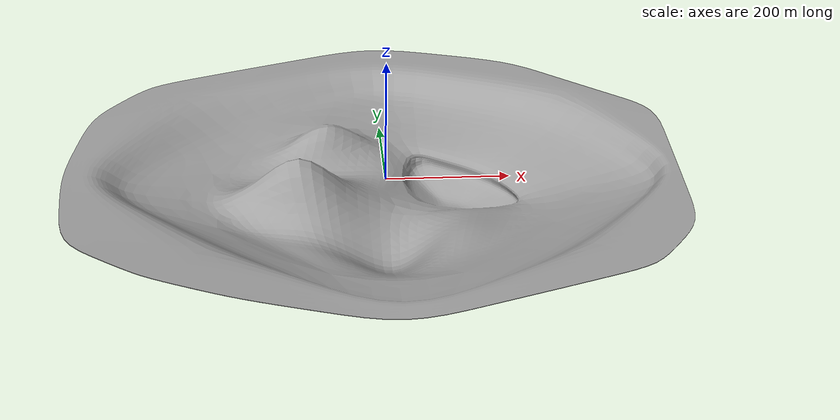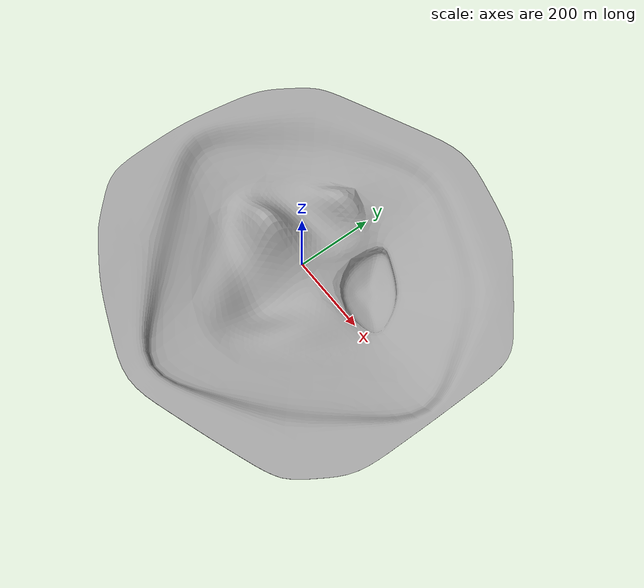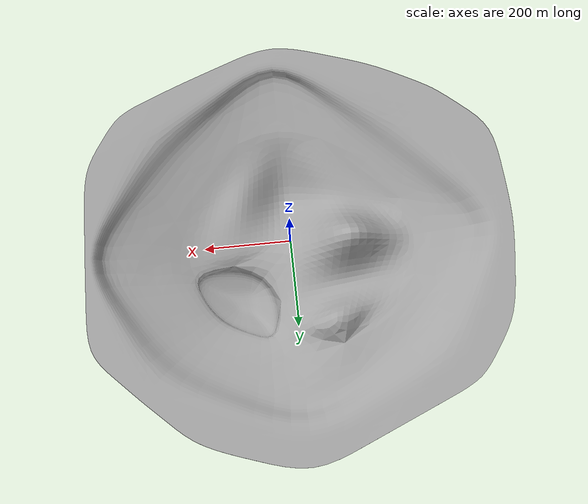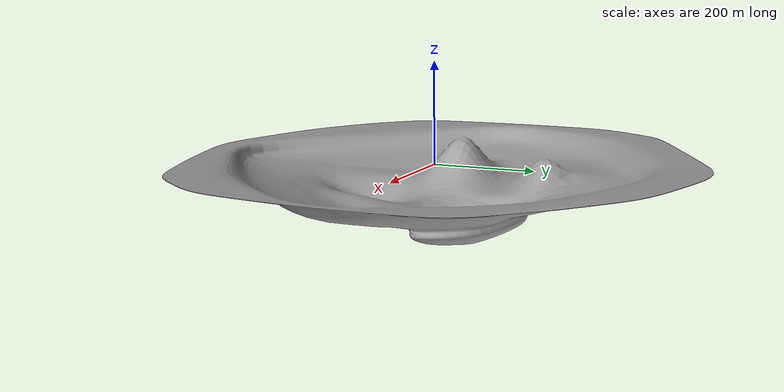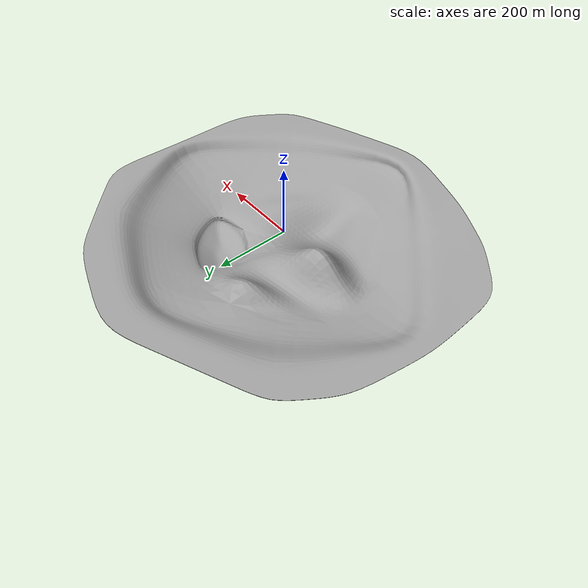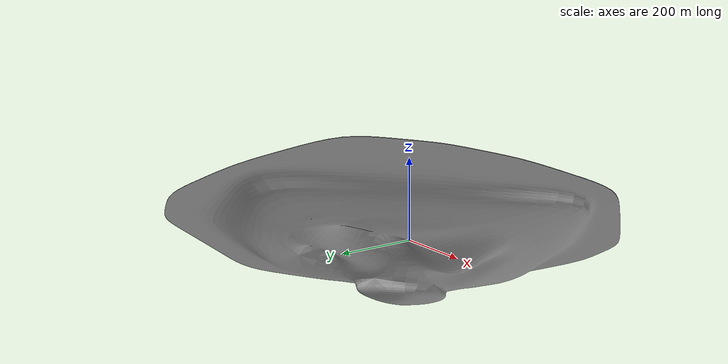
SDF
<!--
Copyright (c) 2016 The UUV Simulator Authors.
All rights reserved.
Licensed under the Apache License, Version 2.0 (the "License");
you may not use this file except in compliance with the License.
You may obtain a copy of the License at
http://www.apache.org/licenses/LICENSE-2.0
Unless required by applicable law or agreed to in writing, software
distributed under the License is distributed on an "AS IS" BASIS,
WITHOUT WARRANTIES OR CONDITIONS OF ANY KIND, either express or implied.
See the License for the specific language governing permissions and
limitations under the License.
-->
<?xml version="1.0" ?>
<sdf version="1.4">

<model name="lake">
    <static>true</static>
    <link name="lake_link">
        <visual name="lake_bottom">
            <cast_shadows>false</cast_shadows>
            <pose>0 0 0 0 0 0</pose>
            <geometry>
                <mesh><uri>model://lake/meshes/LakeBottom.dae</uri><scale>1 1 1</scale></mesh>
            </geometry>
            <material>
              <script>
                <uri>file://Media/materials/scripts/sand.material</uri>
                <name>UUVSimulator/SandAndStones</name>
              </script>
            </material>
        </visual>

        <collision name="lake_bottom">
            <pose>0 0 0 0 0 0</pose>
            <geometry>
                <mesh><uri>model://lake/meshes/LakeBottom.dae</uri><scale>1 1 1</scale></mesh>
            </geometry>
        </collision>

    </link>
</model>

</sdf>
